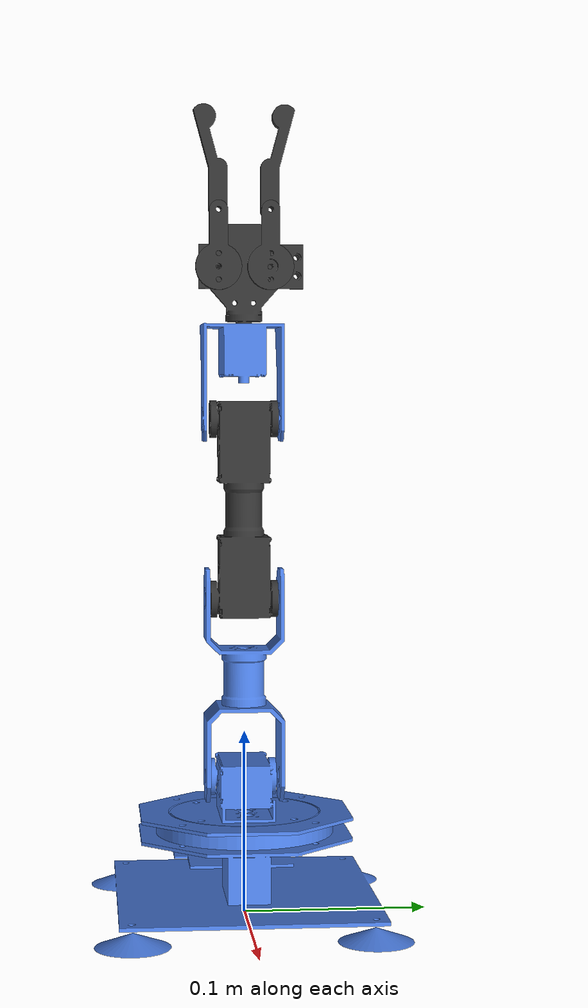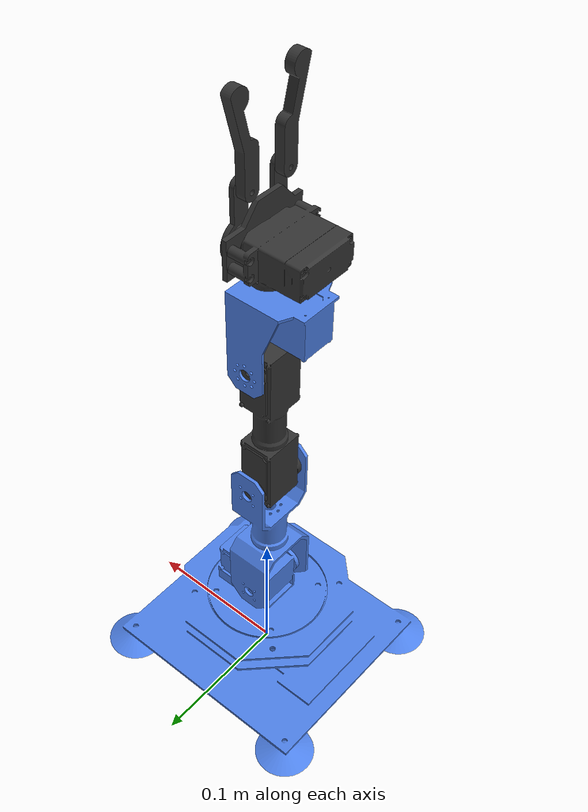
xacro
<?xml version="1.0" ?>

<robot xmlns:xacro="http://www.ros.org/wiki/xacro" name="xarm_1s">
  <material name="black">
    <color rgba="0.2 0.2 0.2 1"/>
  </material>
  <material name="blue">
    <color rgba="0.3 0.5 0.9 1.0"/>
  </material>

  <link name="world"/>

  <joint name="world_joint" type="fixed">
    <parent link="world"/>
    <child link="base_link"/>
    <origin rpy="0.0 0.0 0.0" xyz="0.0 0.0 0.0"/>
  </joint>

  <link name="base_link">
    <visual>
      <origin rpy="0 0 0" xyz="0.0 0.0 0.0" />
      <geometry>
        <mesh filename="package://xarm/meshes/base.stl" scale="1.0 1.0 1.0" />
      </geometry>
      <material name="blue" />
    </visual>
    <collision>
      <origin rpy="0 0 0" xyz="0 0 0" />
      <geometry>
        <mesh filename="package://xarm/meshes/base_collision.stl" scale="1.0 1.0 1.0" />
      </geometry>
    </collision>
  </link>

  <joint name="arm6" type="revolute">
    <limit effort="1000" lower="-2.1" upper="2.1" velocity="1.0" />
    <parent link="base_link"/>
    <child link="link6"/>
    <origin rpy="0.0 0.0 3.14" xyz="0.0 0.0 0.043"/>
    <axis xyz="0 0 -1"/>
  </joint>

  <link name="link6">
    <visual>
      <origin rpy="0 0 0" xyz="0.0 0.0 0.0" />
      <geometry>
        <mesh filename="package://xarm/meshes/link6.stl" scale="1.0 1.0 1.0" />
      </geometry>
      <material name="blue" />
    </visual>
    <collision>
      <origin rpy="0 0 0" xyz="0 0 0" />
      <geometry>
        <mesh filename="package://xarm/meshes/link6_collision.stl" scale="1.0 1.0 1.0" />
      </geometry>
    </collision>
  </link>

  <joint name="arm5" type="revolute">
    <limit effort="1000" lower="-1.5708" upper="1.5708" velocity="1.0" />
    <parent link="link6"/>
    <child link="link5"/>
    <origin rpy="0.0 0.0 0.0" xyz="0.002 0.0 0.032"/>
    <axis xyz="0 1 0"/>
  </joint>

  <link name="link5">
    <visual>
      <origin rpy="0 0 0" xyz="0.0 0.0 0.0" />
      <geometry>
        <mesh filename="package://xarm/meshes/link5.stl" scale="1.0 1.0 1.0" />
      </geometry>
      <material name="blue" />
    </visual>
    <collision>
      <origin rpy="0 0 0" xyz="0 0 0" />
      <geometry>
        <mesh filename="package://xarm/meshes/link5_collision.stl" scale="1.0 1.0 1.0" />
      </geometry>
    </collision>
  </link>

  <joint name="arm4" type="revolute">
    <limit effort="1000" lower="-2.09" upper="2.09" velocity="1.0" />
    <parent link="link5"/>
    <child link="link4"/>
    <origin rpy="0.0 0.0 0.0" xyz="0.0 0.0 0.09775"/>
    <axis xyz="0 -1 0"/>
  </joint>

  <link name="link4">
    <visual>
      <origin rpy="0 0 0" xyz="0.0 0.0 0.0" />
      <geometry>
        <mesh filename="package://xarm/meshes/link4.stl" scale="1.0 1.0 1.0" />
      </geometry>
      <material name="black" />
    </visual>
    <collision>
      <origin rpy="0 0 0" xyz="0 0 0" />
      <geometry>
        <mesh filename="package://xarm/meshes/link4_collision.stl" scale="1.0 1.0 1.0" />
      </geometry>
    </collision>
  </link>

  <joint name="arm3" type="revolute">
    <limit effort="1000" lower="-1.85" upper="2.07" velocity="1.0" />
    <parent link="link4"/>
    <child link="link3"/>
    <origin rpy="0.0 0.0 0.0" xyz="0.0 0.0 0.099"/>
    <axis xyz="0 1 0"/>
  </joint>

  <link name="link3">
    <visual>
      <origin rpy="0 0 0" xyz="0.0 0.0 0.0" />
      <geometry>
        <mesh filename="package://xarm/meshes/link3.stl" scale="1.0 1.0 1.0" />
      </geometry>
      <material name="blue" />
    </visual>
    <collision>
      <origin rpy="0 0 0" xyz="0 0 0" />
      <geometry>
        <mesh filename="package://xarm/meshes/link3_collision.stl" scale="1.0 1.0 1.0" />
      </geometry>
    </collision>
  </link>

  <joint name="arm2" type="revolute">
    <limit effort="1000" lower="-1.95" upper="1.95" velocity="1.0" />
    <parent link="link3"/>
    <child link="link2"/>
    <origin rpy="0.0 0.0 0.0" xyz="-0.00125 0.0 0.050"/>
    <axis xyz="0 0 1"/>
  </joint>

  <link name="link2">
    <visual>
      <origin rpy="0 0 0" xyz="0.0 0.0 0.0" />
      <geometry>
        <mesh filename="package://xarm/meshes/link2.stl" scale="1.0 1.0 1.0" />
      </geometry>
      <material name="black" />
    </visual>
    <collision>
      <origin rpy="0 0 0" xyz="0 0 0" />
      <geometry>
        <mesh filename="package://xarm/meshes/link2_collision.stl" scale="1.0 1.0 1.0" />
      </geometry>
    </collision>
  </link>

  <joint name="arm1" type="revolute">
    <limit effort="1000" lower="0" upper="1.8326" velocity="1.0" />
    <parent link="link2"/>
    <child link="link1"/>
    <origin xyz="-0.0015 -0.014 0.0315" rpy="0.0 0.0 0.0" />
    <axis xyz="1 0 0"/>
  </joint>

  <link name="link1">
    <visual>
      <origin rpy="0 0 0" xyz="0.0 0.0 0.0" />
      <geometry>
        <mesh filename="package://xarm/meshes/link1.stl" scale="1.0 1.0 1.0" />
      </geometry>
      <material name="black" />
    </visual>
    <collision>
      <origin rpy="0 0 0" xyz="0 0 0" />
      <geometry>
        <mesh filename="package://xarm/meshes/link1_collision.stl" scale="1.0 1.0 1.0" />
      </geometry>
    </collision>
  </link>

  <joint name="arm1_left" type="continuous">
    <parent link="link2"/>
    <child link="link1_left"/>
    <origin xyz="-0.0015 0.014 0.0315" rpy="0.0 0.0 0.0" />
    <axis xyz="1 0 0"/>
    <mimic joint="arm1" multiplier="-1" offset="0" />
  </joint>

  <link name="link1_left">
    <visual>
      <origin rpy="0 0 0" xyz="0.0 0.0 0.0" />
      <geometry>
        <mesh filename="package://xarm/meshes/link1_left.stl" scale="1.0 1.0 1.0" />
      </geometry>
      <material name="black" />
    </visual>
    <collision>
      <origin rpy="0 0 0" xyz="0 0 0" />
      <geometry>
        <mesh filename="package://xarm/meshes/link1_left_collision.stl" scale="1.0 1.0 1.0" />
      </geometry>
    </collision>
  </link>

  <joint name="arm0" type="continuous">
    <parent link="link1"/>
    <child link="link0"/>
    <origin xyz="-0.0023 0.0 0.0305" rpy="0.0 0.0 0.0" />
    <axis xyz="1 0 0"/>
    <mimic joint="arm1" multiplier="-1.01" offset="-0.3" />
  </joint>

  <link name="link0">
    <visual>
      <origin rpy="0 0 0" xyz="0.0 0.0 0.0" />
      <geometry>
        <mesh filename="package://xarm/meshes/link0.stl" scale="1.0 1.0 1.0" />
      </geometry>
      <material name="black" />
    </visual>
    <collision>
      <origin rpy="0 0 0" xyz="0 0 0" />
      <geometry>
        <mesh filename="package://xarm/meshes/link0_collision.stl" scale="1.0 1.0 1.0" />
      </geometry>
    </collision>
  </link>

  <joint name="arm0_left" type="continuous">
    <parent link="link1_left"/>
    <child link="link0_left"/>
    <origin xyz="-0.0023 0.0 0.0305" rpy="0.0 0.0 0.0" />
    <axis xyz="1 0 0"/>
    <mimic joint="arm1" multiplier="1.01" offset="0.3" />
  </joint>

  <link name="link0_left">
    <visual>
      <origin rpy="0 0 0" xyz="0.0 0.0 0.0" />
      <geometry>
        <mesh filename="package://xarm/meshes/link0_left.stl" scale="1.0 1.0 1.0" />
      </geometry>
      <material name="black" />
    </visual>
    <collision>
      <origin rpy="0 0 0" xyz="0 0 0" />
      <geometry>
        <mesh filename="package://xarm/meshes/link0_left_collision.stl" scale="1.0 1.0 1.0" />
      </geometry>
    </collision>
  </link>

  <!-- TO-DO: move out to separate file -->
  <joint name="depth_joint" type="fixed">
    <parent link="link2"/>
    <child link="depth"/>
    <origin rpy="-1.5708 0 -1.5708" xyz="0.044 -0.0115 0.045"/>
  </joint>
  <link name="depth" />

  <!-- TO-DO: move out to separate file -->
  <ros2_control name="xarm_1s" type="system">
    <hardware>
      <plugin>ros2_control_xarm_1s/XArm1SSystemHardware</plugin>
    </hardware>

    <joint name="arm6">
      <command_interface name="position">
        <param name="min">-2.09439435</param>
        <param name="max">2.09439435</param>
      </command_interface>
      <state_interface name="position"/>
    </joint>

    <joint name="arm5">
      <command_interface name="position">
        <param name="min">-2.09439435</param>
        <param name="max">2.09439435</param>
      </command_interface>
      <state_interface name="position"/>
    </joint>

    <joint name="arm4">
      <command_interface name="position">
        <param name="min">-2.09439435</param>
        <param name="max">2.09439435</param>
      </command_interface>
      <state_interface name="position"/>
    </joint>

    <joint name="arm3">
      <command_interface name="position">
        <param name="min">-2.09439435</param>
        <param name="max">2.09439435</param>
      </command_interface>
      <state_interface name="position"/>
    </joint>

    <joint name="arm2">
      <command_interface name="position">
        <param name="min">-2.09439435</param>
        <param name="max">2.09439435</param>
      </command_interface>
      <state_interface name="position"/>
    </joint>

    <joint name="arm1">
      <command_interface name="position">
        <param name="min">0</param>
        <param name="max">0.8464847</param>
      </command_interface>
      <state_interface name="position"/>
    </joint>
  </ros2_control>
</robot>
